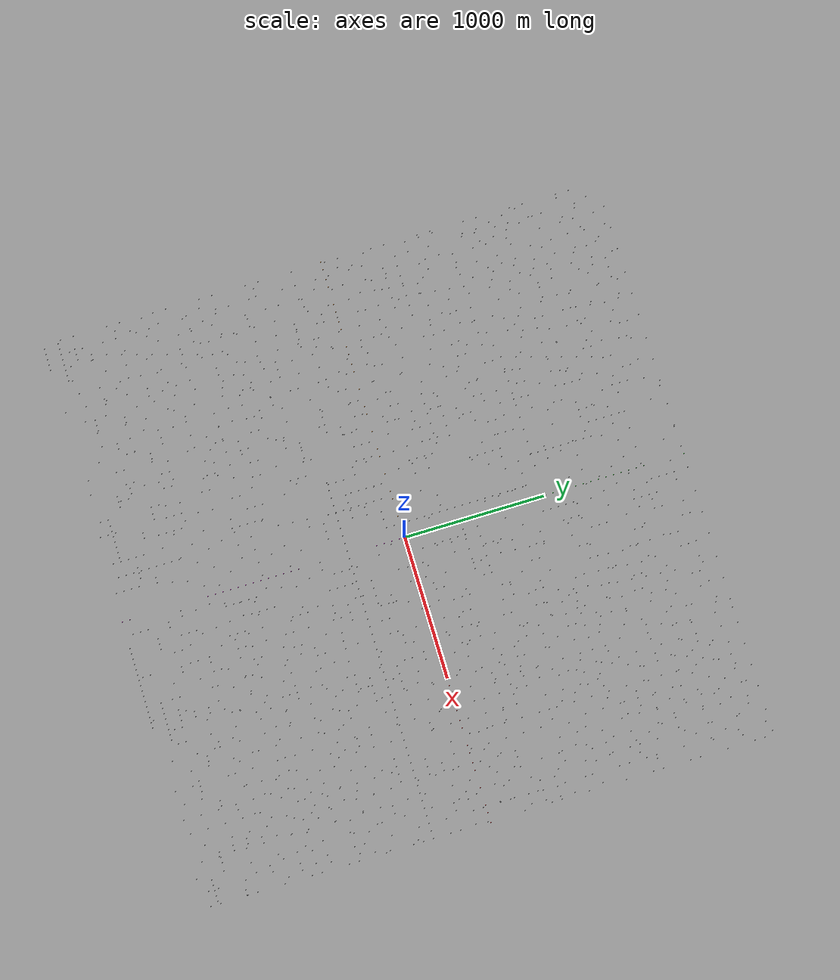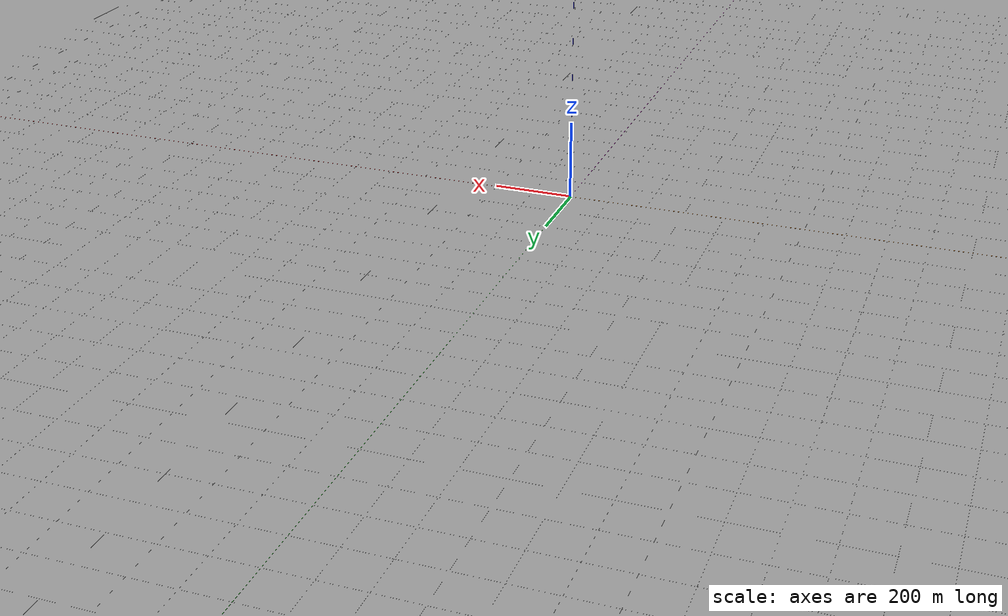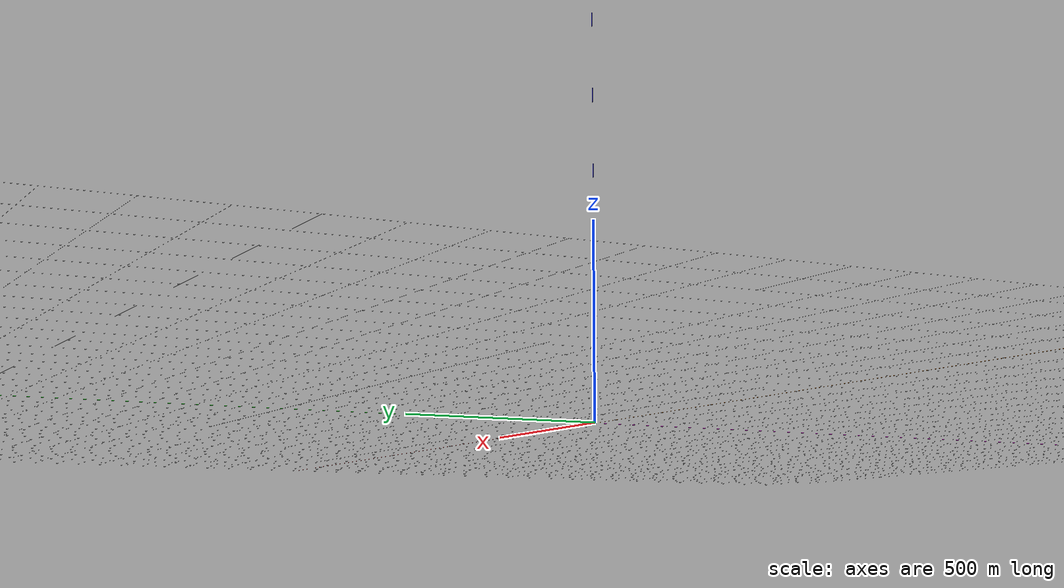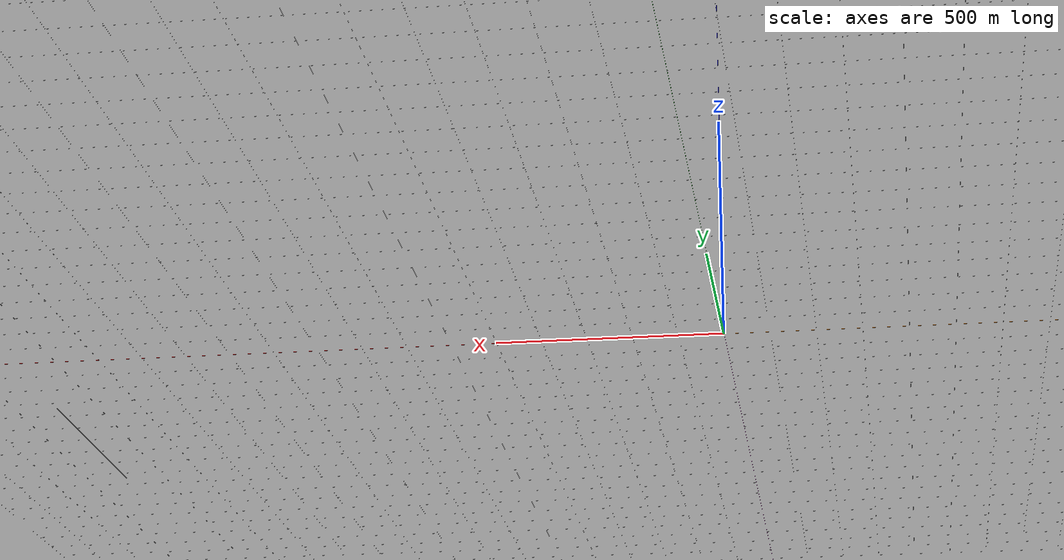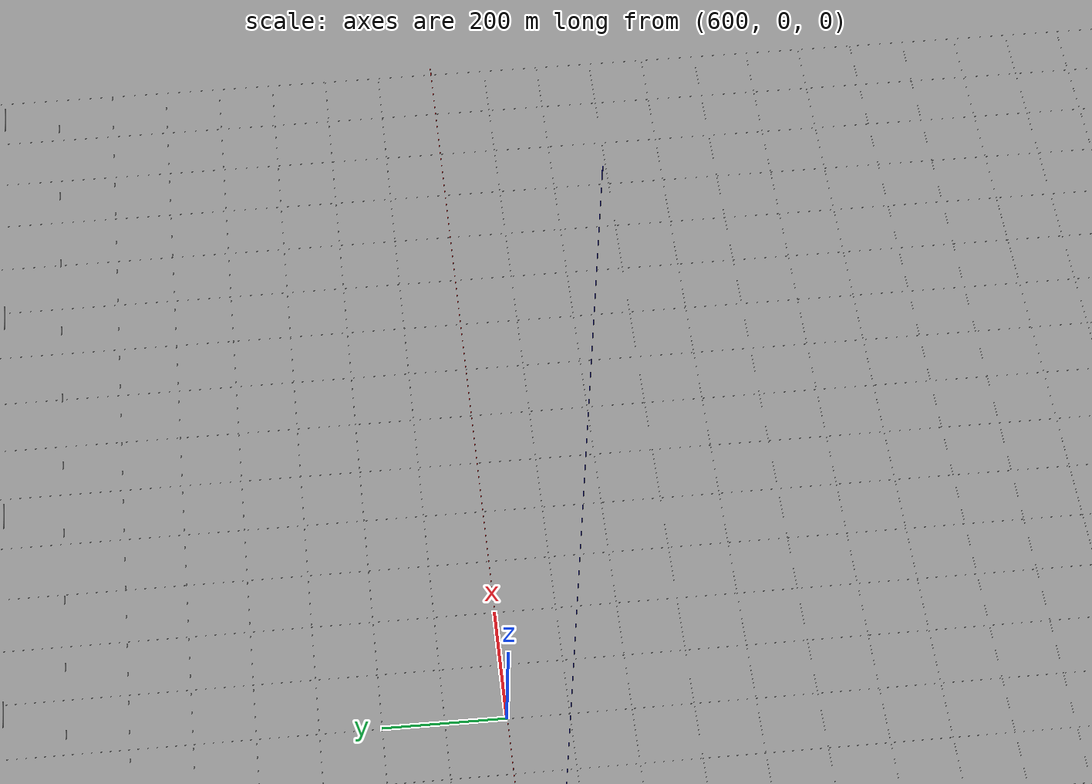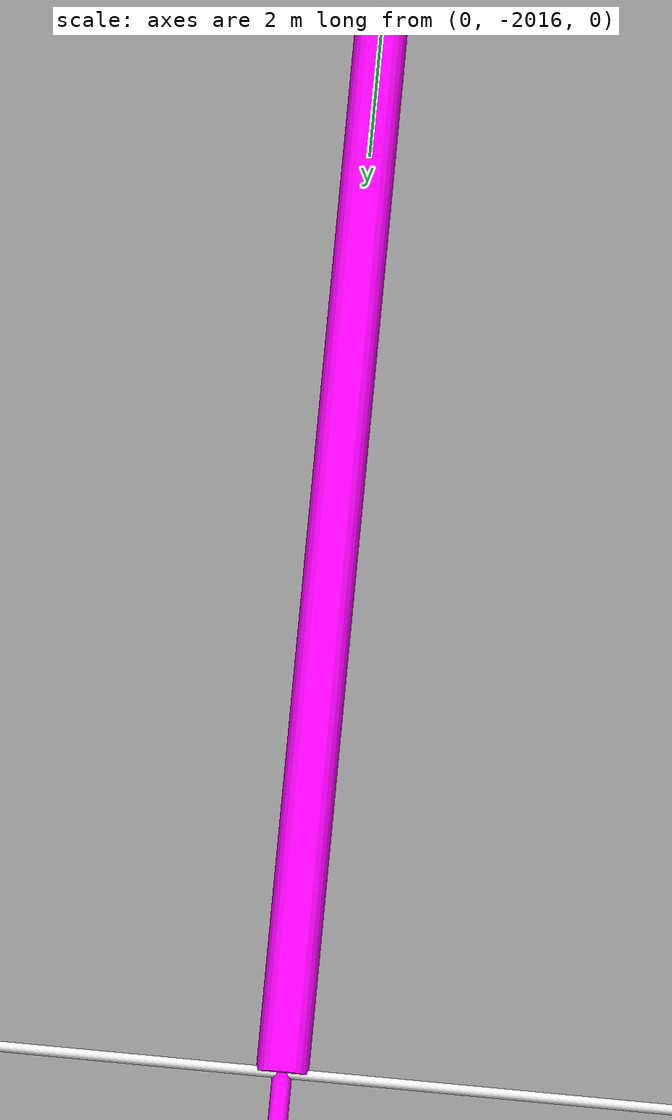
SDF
<?xml version="1.0" ?>
<sdf version="1.6">
  <model name="xy_reference_wheel">
    <static>true</static>
    <pose>0 0 0.02 0 0 0</pose>

    <!-- === EJE X+ ROJO === -->
    <link name="axis_x_body">
      <visual name="vis">
        <pose>1000 0 0  0 1.5707963 0</pose>
        <geometry><cylinder><radius>0.15</radius><length>2000</length></cylinder></geometry>
        <material><ambient>1 0 0 1</ambient><diffuse>1 0 0 1</diffuse></material>
      </visual>
    </link>
    <link name="axis_x_tip">
      <visual name="vis">
        <pose>2008 0 0  0 1.5707963 0</pose>
        <geometry><cylinder><radius>0.4</radius><length>16</length></cylinder></geometry>
        <material><ambient>1 0 0 1</ambient><diffuse>1 0 0 1</diffuse></material>
      </visual>
    </link>

    <!-- === EJE X- NARANJA === -->
    <link name="axis_xneg_body">
      <visual name="vis">
        <pose>-1000 0 0  0 1.5707963 0</pose>
        <geometry><cylinder><radius>0.15</radius><length>2000</length></cylinder></geometry>
        <material><ambient>1 0.5 0 1</ambient><diffuse>1 0.5 0 1</diffuse></material>
      </visual>
    </link>
    <link name="axis_xneg_tip">
      <visual name="vis">
        <pose>-2008 0 0  0 1.5707963 0</pose>
        <geometry><cylinder><radius>0.4</radius><length>16</length></cylinder></geometry>
        <material><ambient>1 0.5 0 1</ambient><diffuse>1 0.5 0 1</diffuse></material>
      </visual>
    </link>

    <!-- === EJE Y+ VERDE === -->
    <link name="axis_y_body">
      <visual name="vis">
        <pose>0 1000 0  1.5707963 0 0</pose>
        <geometry><cylinder><radius>0.15</radius><length>2000</length></cylinder></geometry>
        <material><ambient>0 1 0 1</ambient><diffuse>0 1 0 1</diffuse></material>
      </visual>
    </link>
    <link name="axis_y_tip">
      <visual name="vis">
        <pose>0 2008 0  1.5707963 0 0</pose>
        <geometry><cylinder><radius>0.4</radius><length>16</length></cylinder></geometry>
        <material><ambient>0 1 0 1</ambient><diffuse>0 1 0 1</diffuse></material>
      </visual>
    </link>

    <!-- === EJE Y- MAGENTA === -->
    <link name="axis_yneg_body">
      <visual name="vis">
        <pose>0 -1000 0  1.5707963 0 0</pose>
        <geometry><cylinder><radius>0.15</radius><length>2000</length></cylinder></geometry>
        <material><ambient>1 0 1 1</ambient><diffuse>1 0 1 1</diffuse></material>
      </visual>
    </link>
    <link name="axis_yneg_tip">
      <visual name="vis">
        <pose>0 -2008 0  1.5707963 0 0</pose>
        <geometry><cylinder><radius>0.4</radius><length>16</length></cylinder></geometry>
        <material><ambient>1 0 1 1</ambient><diffuse>1 0 1 1</diffuse></material>
      </visual>
    </link>

    <!-- === EJE Z+ AZUL === -->
    <link name="axis_z_body">
      <visual name="vis">
        <pose>0 0 1000  0 0 0</pose>
        <geometry><cylinder><radius>0.15</radius><length>2000</length></cylinder></geometry>
        <material><ambient>0 0 1 1</ambient><diffuse>0 0 1 1</diffuse></material>
      </visual>
    </link>
    <link name="axis_z_tip">
      <visual name="vis">
        <pose>0 0 2008  0 0 0</pose>
        <geometry><cylinder><radius>0.4</radius><length>16</length></cylinder></geometry>
        <material><ambient>0 0 1 1</ambient><diffuse>0 0 1 1</diffuse></material>
      </visual>
    </link>

    <!-- === MALLA DE REFERENCIA XY (espaciado 100 m, extensión ±2000 m) === -->
    <!-- z=0.05 para evitar z-fighting con el océano, color sólido blanco tenue -->
    <link name="grid_x_0">
      <visual name="vis">
        <pose>0 -2000 0.05  0 1.5707963 0</pose>
        <geometry><cylinder><radius>0.08</radius><length>4000</length></cylinder></geometry>
        <material>
          <ambient>0.9 0.9 0.9 1</ambient>
          <diffuse>0.9 0.9 0.9 1</diffuse>
          <transparency>0.5</transparency>
        </material>
      </visual>
    </link>
    <link name="grid_x_1">
      <visual name="vis">
        <pose>0 -1900 0.05  0 1.5707963 0</pose>
        <geometry><cylinder><radius>0.08</radius><length>4000</length></cylinder></geometry>
        <material>
          <ambient>0.9 0.9 0.9 1</ambient>
          <diffuse>0.9 0.9 0.9 1</diffuse>
          <transparency>0.5</transparency>
        </material>
      </visual>
    </link>
    <link name="grid_x_2">
      <visual name="vis">
        <pose>0 -1800 0.05  0 1.5707963 0</pose>
        <geometry><cylinder><radius>0.08</radius><length>4000</length></cylinder></geometry>
        <material>
          <ambient>0.9 0.9 0.9 1</ambient>
          <diffuse>0.9 0.9 0.9 1</diffuse>
          <transparency>0.5</transparency>
        </material>
      </visual>
    </link>
    <link name="grid_x_3">
      <visual name="vis">
        <pose>0 -1700 0.05  0 1.5707963 0</pose>
        <geometry><cylinder><radius>0.08</radius><length>4000</length></cylinder></geometry>
        <material>
          <ambient>0.9 0.9 0.9 1</ambient>
          <diffuse>0.9 0.9 0.9 1</diffuse>
          <transparency>0.5</transparency>
        </material>
      </visual>
    </link>
    <link name="grid_x_4">
      <visual name="vis">
        <pose>0 -1600 0.05  0 1.5707963 0</pose>
        <geometry><cylinder><radius>0.08</radius><length>4000</length></cylinder></geometry>
        <material>
          <ambient>0.9 0.9 0.9 1</ambient>
          <diffuse>0.9 0.9 0.9 1</diffuse>
          <transparency>0.5</transparency>
        </material>
      </visual>
    </link>
    <link name="grid_x_5">
      <visual name="vis">
        <pose>0 -1500 0.05  0 1.5707963 0</pose>
        <geometry><cylinder><radius>0.08</radius><length>4000</length></cylinder></geometry>
        <material>
          <ambient>0.9 0.9 0.9 1</ambient>
          <diffuse>0.9 0.9 0.9 1</diffuse>
          <transparency>0.5</transparency>
        </material>
      </visual>
    </link>
    <link name="grid_x_6">
      <visual name="vis">
        <pose>0 -1400 0.05  0 1.5707963 0</pose>
        <geometry><cylinder><radius>0.08</radius><length>4000</length></cylinder></geometry>
        <material>
          <ambient>0.9 0.9 0.9 1</ambient>
          <diffuse>0.9 0.9 0.9 1</diffuse>
          <transparency>0.5</transparency>
        </material>
      </visual>
    </link>
    <link name="grid_x_7">
      <visual name="vis">
        <pose>0 -1300 0.05  0 1.5707963 0</pose>
        <geometry><cylinder><radius>0.08</radius><length>4000</length></cylinder></geometry>
        <material>
          <ambient>0.9 0.9 0.9 1</ambient>
          <diffuse>0.9 0.9 0.9 1</diffuse>
          <transparency>0.5</transparency>
        </material>
      </visual>
    </link>
    <link name="grid_x_8">
      <visual name="vis">
        <pose>0 -1200 0.05  0 1.5707963 0</pose>
        <geometry><cylinder><radius>0.08</radius><length>4000</length></cylinder></geometry>
        <material>
          <ambient>0.9 0.9 0.9 1</ambient>
          <diffuse>0.9 0.9 0.9 1</diffuse>
          <transparency>0.5</transparency>
        </material>
      </visual>
    </link>
    <link name="grid_x_9">
      <visual name="vis">
        <pose>0 -1100 0.05  0 1.5707963 0</pose>
        <geometry><cylinder><radius>0.08</radius><length>4000</length></cylinder></geometry>
        <material>
          <ambient>0.9 0.9 0.9 1</ambient>
          <diffuse>0.9 0.9 0.9 1</diffuse>
          <transparency>0.5</transparency>
        </material>
      </visual>
    </link>
    <link name="grid_x_10">
      <visual name="vis">
        <pose>0 -1000 0.05  0 1.5707963 0</pose>
        <geometry><cylinder><radius>0.08</radius><length>4000</length></cylinder></geometry>
        <material>
          <ambient>0.9 0.9 0.9 1</ambient>
          <diffuse>0.9 0.9 0.9 1</diffuse>
          <transparency>0.5</transparency>
        </material>
      </visual>
    </link>
    <link name="grid_x_11">
      <visual name="vis">
        <pose>0 -900 0.05  0 1.5707963 0</pose>
        <geometry><cylinder><radius>0.08</radius><length>4000</length></cylinder></geometry>
        <material>
          <ambient>0.9 0.9 0.9 1</ambient>
          <diffuse>0.9 0.9 0.9 1</diffuse>
          <transparency>0.5</transparency>
        </material>
      </visual>
    </link>
    <link name="grid_x_12">
      <visual name="vis">
        <pose>0 -800 0.05  0 1.5707963 0</pose>
        <geometry><cylinder><radius>0.08</radius><length>4000</length></cylinder></geometry>
        <material>
          <ambient>0.9 0.9 0.9 1</ambient>
          <diffuse>0.9 0.9 0.9 1</diffuse>
          <transparency>0.5</transparency>
        </material>
      </visual>
    </link>
    <link name="grid_x_13">
      <visual name="vis">
        <pose>0 -700 0.05  0 1.5707963 0</pose>
        <geometry><cylinder><radius>0.08</radius><length>4000</length></cylinder></geometry>
        <material>
          <ambient>0.9 0.9 0.9 1</ambient>
          <diffuse>0.9 0.9 0.9 1</diffuse>
          <transparency>0.5</transparency>
        </material>
      </visual>
    </link>
    <link name="grid_x_14">
      <visual name="vis">
        <pose>0 -600 0.05  0 1.5707963 0</pose>
        <geometry><cylinder><radius>0.08</radius><length>4000</length></cylinder></geometry>
        <material>
          <ambient>0.9 0.9 0.9 1</ambient>
          <diffuse>0.9 0.9 0.9 1</diffuse>
          <transparency>0.5</transparency>
        </material>
      </visual>
    </link>
    <link name="grid_x_15">
      <visual name="vis">
        <pose>0 -500 0.05  0 1.5707963 0</pose>
        <geometry><cylinder><radius>0.08</radius><length>4000</length></cylinder></geometry>
        <material>
          <ambient>0.9 0.9 0.9 1</ambient>
          <diffuse>0.9 0.9 0.9 1</diffuse>
          <transparency>0.5</transparency>
        </material>
      </visual>
    </link>
    <link name="grid_x_16">
      <visual name="vis">
        <pose>0 -400 0.05  0 1.5707963 0</pose>
        <geometry><cylinder><radius>0.08</radius><length>4000</length></cylinder></geometry>
        <material>
          <ambient>0.9 0.9 0.9 1</ambient>
          <diffuse>0.9 0.9 0.9 1</diffuse>
          <transparency>0.5</transparency>
        </material>
      </visual>
    </link>
    <link name="grid_x_17">
      <visual name="vis">
        <pose>0 -300 0.05  0 1.5707963 0</pose>
        <geometry><cylinder><radius>0.08</radius><length>4000</length></cylinder></geometry>
        <material>
          <ambient>0.9 0.9 0.9 1</ambient>
          <diffuse>0.9 0.9 0.9 1</diffuse>
          <transparency>0.5</transparency>
        </material>
      </visual>
    </link>
    <link name="grid_x_18">
      <visual name="vis">
        <pose>0 -200 0.05  0 1.5707963 0</pose>
        <geometry><cylinder><radius>0.08</radius><length>4000</length></cylinder></geometry>
        <material>
          <ambient>0.9 0.9 0.9 1</ambient>
          <diffuse>0.9 0.9 0.9 1</diffuse>
          <transparency>0.5</transparency>
        </material>
      </visual>
    </link>
    <link name="grid_x_19">
      <visual name="vis">
        <pose>0 -100 0.05  0 1.5707963 0</pose>
        <geometry><cylinder><radius>0.08</radius><length>4000</length></cylinder></geometry>
        <material>
          <ambient>0.9 0.9 0.9 1</ambient>
          <diffuse>0.9 0.9 0.9 1</diffuse>
          <transparency>0.5</transparency>
        </material>
      </visual>
    </link>
    <link name="grid_x_20">
      <visual name="vis">
        <pose>0 100 0.05  0 1.5707963 0</pose>
        <geometry><cylinder><radius>0.08</radius><length>4000</length></cylinder></geometry>
        <material>
          <ambient>0.9 0.9 0.9 1</ambient>
          <diffuse>0.9 0.9 0.9 1</diffuse>
          <transparency>0.5</transparency>
        </material>
      </visual>
    </link>
    <link name="grid_x_21">
      <visual name="vis">
        <pose>0 200 0.05  0 1.5707963 0</pose>
        <geometry><cylinder><radius>0.08</radius><length>4000</length></cylinder></geometry>
        <material>
          <ambient>0.9 0.9 0.9 1</ambient>
          <diffuse>0.9 0.9 0.9 1</diffuse>
          <transparency>0.5</transparency>
        </material>
      </visual>
    </link>
    <link name="grid_x_22">
      <visual name="vis">
        <pose>0 300 0.05  0 1.5707963 0</pose>
        <geometry><cylinder><radius>0.08</radius><length>4000</length></cylinder></geometry>
        <material>
          <ambient>0.9 0.9 0.9 1</ambient>
          <diffuse>0.9 0.9 0.9 1</diffuse>
          <transparency>0.5</transparency>
        </material>
      </visual>
    </link>
    <link name="grid_x_23">
      <visual name="vis">
        <pose>0 400 0.05  0 1.5707963 0</pose>
        <geometry><cylinder><radius>0.08</radius><length>4000</length></cylinder></geometry>
        <material>
          <ambient>0.9 0.9 0.9 1</ambient>
          <diffuse>0.9 0.9 0.9 1</diffuse>
          <transparency>0.5</transparency>
        </material>
      </visual>
    </link>
    <link name="grid_x_24">
      <visual name="vis">
        <pose>0 500 0.05  0 1.5707963 0</pose>
        <geometry><cylinder><radius>0.08</radius><length>4000</length></cylinder></geometry>
        <material>
          <ambient>0.9 0.9 0.9 1</ambient>
          <diffuse>0.9 0.9 0.9 1</diffuse>
          <transparency>0.5</transparency>
        </material>
      </visual>
    </link>
    <link name="grid_x_25">
      <visual name="vis">
        <pose>0 600 0.05  0 1.5707963 0</pose>
        <geometry><cylinder><radius>0.08</radius><length>4000</length></cylinder></geometry>
        <material>
          <ambient>0.9 0.9 0.9 1</ambient>
          <diffuse>0.9 0.9 0.9 1</diffuse>
          <transparency>0.5</transparency>
        </material>
      </visual>
    </link>
    <link name="grid_x_26">
      <visual name="vis">
        <pose>0 700 0.05  0 1.5707963 0</pose>
        <geometry><cylinder><radius>0.08</radius><length>4000</length></cylinder></geometry>
        <material>
          <ambient>0.9 0.9 0.9 1</ambient>
          <diffuse>0.9 0.9 0.9 1</diffuse>
          <transparency>0.5</transparency>
        </material>
      </visual>
    </link>
    <link name="grid_x_27">
      <visual name="vis">
        <pose>0 800 0.05  0 1.5707963 0</pose>
        <geometry><cylinder><radius>0.08</radius><length>4000</length></cylinder></geometry>
        <material>
          <ambient>0.9 0.9 0.9 1</ambient>
          <diffuse>0.9 0.9 0.9 1</diffuse>
          <transparency>0.5</transparency>
        </material>
      </visual>
    </link>
    <link name="grid_x_28">
      <visual name="vis">
        <pose>0 900 0.05  0 1.5707963 0</pose>
        <geometry><cylinder><radius>0.08</radius><length>4000</length></cylinder></geometry>
        <material>
          <ambient>0.9 0.9 0.9 1</ambient>
          <diffuse>0.9 0.9 0.9 1</diffuse>
          <transparency>0.5</transparency>
        </material>
      </visual>
    </link>
    <link name="grid_x_29">
      <visual name="vis">
        <pose>0 1000 0.05  0 1.5707963 0</pose>
        <geometry><cylinder><radius>0.08</radius><length>4000</length></cylinder></geometry>
        <material>
          <ambient>0.9 0.9 0.9 1</ambient>
          <diffuse>0.9 0.9 0.9 1</diffuse>
          <transparency>0.5</transparency>
        </material>
      </visual>
    </link>
    <link name="grid_x_30">
      <visual name="vis">
        <pose>0 1100 0.05  0 1.5707963 0</pose>
        <geometry><cylinder><radius>0.08</radius><length>4000</length></cylinder></geometry>
        <material>
          <ambient>0.9 0.9 0.9 1</ambient>
          <diffuse>0.9 0.9 0.9 1</diffuse>
          <transparency>0.5</transparency>
        </material>
      </visual>
    </link>
    <link name="grid_x_31">
      <visual name="vis">
        <pose>0 1200 0.05  0 1.5707963 0</pose>
        <geometry><cylinder><radius>0.08</radius><length>4000</length></cylinder></geometry>
        <material>
          <ambient>0.9 0.9 0.9 1</ambient>
          <diffuse>0.9 0.9 0.9 1</diffuse>
          <transparency>0.5</transparency>
        </material>
      </visual>
    </link>
    <link name="grid_x_32">
      <visual name="vis">
        <pose>0 1300 0.05  0 1.5707963 0</pose>
        <geometry><cylinder><radius>0.08</radius><length>4000</length></cylinder></geometry>
        <material>
          <ambient>0.9 0.9 0.9 1</ambient>
          <diffuse>0.9 0.9 0.9 1</diffuse>
          <transparency>0.5</transparency>
        </material>
      </visual>
    </link>
    <link name="grid_x_33">
      <visual name="vis">
        <pose>0 1400 0.05  0 1.5707963 0</pose>
        <geometry><cylinder><radius>0.08</radius><length>4000</length></cylinder></geometry>
        <material>
          <ambient>0.9 0.9 0.9 1</ambient>
          <diffuse>0.9 0.9 0.9 1</diffuse>
          <transparency>0.5</transparency>
        </material>
      </visual>
    </link>
    <link name="grid_x_34">
      <visual name="vis">
        <pose>0 1500 0.05  0 1.5707963 0</pose>
        <geometry><cylinder><radius>0.08</radius><length>4000</length></cylinder></geometry>
        <material>
          <ambient>0.9 0.9 0.9 1</ambient>
          <diffuse>0.9 0.9 0.9 1</diffuse>
          <transparency>0.5</transparency>
        </material>
      </visual>
    </link>
    <link name="grid_x_35">
      <visual name="vis">
        <pose>0 1600 0.05  0 1.5707963 0</pose>
        <geometry><cylinder><radius>0.08</radius><length>4000</length></cylinder></geometry>
        <material>
          <ambient>0.9 0.9 0.9 1</ambient>
          <diffuse>0.9 0.9 0.9 1</diffuse>
          <transparency>0.5</transparency>
        </material>
      </visual>
    </link>
    <link name="grid_x_36">
      <visual name="vis">
        <pose>0 1700 0.05  0 1.5707963 0</pose>
        <geometry><cylinder><radius>0.08</radius><length>4000</length></cylinder></geometry>
        <material>
          <ambient>0.9 0.9 0.9 1</ambient>
          <diffuse>0.9 0.9 0.9 1</diffuse>
          <transparency>0.5</transparency>
        </material>
      </visual>
    </link>
    <link name="grid_x_37">
      <visual name="vis">
        <pose>0 1800 0.05  0 1.5707963 0</pose>
        <geometry><cylinder><radius>0.08</radius><length>4000</length></cylinder></geometry>
        <material>
          <ambient>0.9 0.9 0.9 1</ambient>
          <diffuse>0.9 0.9 0.9 1</diffuse>
          <transparency>0.5</transparency>
        </material>
      </visual>
    </link>
    <link name="grid_x_38">
      <visual name="vis">
        <pose>0 1900 0.05  0 1.5707963 0</pose>
        <geometry><cylinder><radius>0.08</radius><length>4000</length></cylinder></geometry>
        <material>
          <ambient>0.9 0.9 0.9 1</ambient>
          <diffuse>0.9 0.9 0.9 1</diffuse>
          <transparency>0.5</transparency>
        </material>
      </visual>
    </link>
    <link name="grid_x_39">
      <visual name="vis">
        <pose>0 2000 0.05  0 1.5707963 0</pose>
        <geometry><cylinder><radius>0.08</radius><length>4000</length></cylinder></geometry>
        <material>
          <ambient>0.9 0.9 0.9 1</ambient>
          <diffuse>0.9 0.9 0.9 1</diffuse>
          <transparency>0.5</transparency>
        </material>
      </visual>
    </link>
    <link name="grid_y_0">
      <visual name="vis">
        <pose>-2000 0 0.05  1.5707963 0 0</pose>
        <geometry><cylinder><radius>0.08</radius><length>4000</length></cylinder></geometry>
        <material>
          <ambient>0.9 0.9 0.9 1</ambient>
          <diffuse>0.9 0.9 0.9 1</diffuse>
          <transparency>0.5</transparency>
        </material>
      </visual>
    </link>
    <link name="grid_y_1">
      <visual name="vis">
        <pose>-1900 0 0.05  1.5707963 0 0</pose>
        <geometry><cylinder><radius>0.08</radius><length>4000</length></cylinder></geometry>
        <material>
          <ambient>0.9 0.9 0.9 1</ambient>
          <diffuse>0.9 0.9 0.9 1</diffuse>
          <transparency>0.5</transparency>
        </material>
      </visual>
    </link>
    <link name="grid_y_2">
      <visual name="vis">
        <pose>-1800 0 0.05  1.5707963 0 0</pose>
        <geometry><cylinder><radius>0.08</radius><length>4000</length></cylinder></geometry>
        <material>
          <ambient>0.9 0.9 0.9 1</ambient>
          <diffuse>0.9 0.9 0.9 1</diffuse>
          <transparency>0.5</transparency>
        </material>
      </visual>
    </link>
    <link name="grid_y_3">
      <visual name="vis">
        <pose>-1700 0 0.05  1.5707963 0 0</pose>
        <geometry><cylinder><radius>0.08</radius><length>4000</length></cylinder></geometry>
        <material>
          <ambient>0.9 0.9 0.9 1</ambient>
          <diffuse>0.9 0.9 0.9 1</diffuse>
          <transparency>0.5</transparency>
        </material>
      </visual>
    </link>
    <link name="grid_y_4">
      <visual name="vis">
        <pose>-1600 0 0.05  1.5707963 0 0</pose>
        <geometry><cylinder><radius>0.08</radius><length>4000</length></cylinder></geometry>
        <material>
          <ambient>0.9 0.9 0.9 1</ambient>
          <diffuse>0.9 0.9 0.9 1</diffuse>
          <transparency>0.5</transparency>
        </material>
      </visual>
    </link>
    <link name="grid_y_5">
      <visual name="vis">
        <pose>-1500 0 0.05  1.5707963 0 0</pose>
        <geometry><cylinder><radius>0.08</radius><length>4000</length></cylinder></geometry>
        <material>
          <ambient>0.9 0.9 0.9 1</ambient>
          <diffuse>0.9 0.9 0.9 1</diffuse>
          <transparency>0.5</transparency>
        </material>
      </visual>
    </link>
    <link name="grid_y_6">
      <visual name="vis">
        <pose>-1400 0 0.05  1.5707963 0 0</pose>
        <geometry><cylinder><radius>0.08</radius><length>4000</length></cylinder></geometry>
        <material>
          <ambient>0.9 0.9 0.9 1</ambient>
          <diffuse>0.9 0.9 0.9 1</diffuse>
          <transparency>0.5</transparency>
        </material>
      </visual>
    </link>
    <link name="grid_y_7">
      <visual name="vis">
        <pose>-1300 0 0.05  1.5707963 0 0</pose>
        <geometry><cylinder><radius>0.08</radius><length>4000</length></cylinder></geometry>
        <material>
          <ambient>0.9 0.9 0.9 1</ambient>
          <diffuse>0.9 0.9 0.9 1</diffuse>
          <transparency>0.5</transparency>
        </material>
      </visual>
    </link>
    <link name="grid_y_8">
      <visual name="vis">
        <pose>-1200 0 0.05  1.5707963 0 0</pose>
        <geometry><cylinder><radius>0.08</radius><length>4000</length></cylinder></geometry>
        <material>
          <ambient>0.9 0.9 0.9 1</ambient>
          <diffuse>0.9 0.9 0.9 1</diffuse>
          <transparency>0.5</transparency>
        </material>
      </visual>
    </link>
    <link name="grid_y_9">
      <visual name="vis">
        <pose>-1100 0 0.05  1.5707963 0 0</pose>
        <geometry><cylinder><radius>0.08</radius><length>4000</length></cylinder></geometry>
        <material>
          <ambient>0.9 0.9 0.9 1</ambient>
          <diffuse>0.9 0.9 0.9 1</diffuse>
          <transparency>0.5</transparency>
        </material>
      </visual>
    </link>
    <link name="grid_y_10">
      <visual name="vis">
        <pose>-1000 0 0.05  1.5707963 0 0</pose>
        <geometry><cylinder><radius>0.08</radius><length>4000</length></cylinder></geometry>
        <material>
          <ambient>0.9 0.9 0.9 1</ambient>
          <diffuse>0.9 0.9 0.9 1</diffuse>
          <transparency>0.5</transparency>
        </material>
      </visual>
    </link>
    <link name="grid_y_11">
      <visual name="vis">
        <pose>-900 0 0.05  1.5707963 0 0</pose>
        <geometry><cylinder><radius>0.08</radius><length>4000</length></cylinder></geometry>
        <material>
          <ambient>0.9 0.9 0.9 1</ambient>
          <diffuse>0.9 0.9 0.9 1</diffuse>
          <transparency>0.5</transparency>
        </material>
      </visual>
    </link>
    <link name="grid_y_12">
      <visual name="vis">
        <pose>-800 0 0.05  1.5707963 0 0</pose>
        <geometry><cylinder><radius>0.08</radius><length>4000</length></cylinder></geometry>
        <material>
          <ambient>0.9 0.9 0.9 1</ambient>
          <diffuse>0.9 0.9 0.9 1</diffuse>
          <transparency>0.5</transparency>
        </material>
      </visual>
    </link>
    <link name="grid_y_13">
      <visual name="vis">
        <pose>-700 0 0.05  1.5707963 0 0</pose>
        <geometry><cylinder><radius>0.08</radius><length>4000</length></cylinder></geometry>
        <material>
          <ambient>0.9 0.9 0.9 1</ambient>
          <diffuse>0.9 0.9 0.9 1</diffuse>
          <transparency>0.5</transparency>
        </material>
      </visual>
    </link>
    <link name="grid_y_14">
      <visual name="vis">
        <pose>-600 0 0.05  1.5707963 0 0</pose>
        <geometry><cylinder><radius>0.08</radius><length>4000</length></cylinder></geometry>
        <material>
          <ambient>0.9 0.9 0.9 1</ambient>
          <diffuse>0.9 0.9 0.9 1</diffuse>
          <transparency>0.5</transparency>
        </material>
      </visual>
    </link>
    <link name="grid_y_15">
      <visual name="vis">
        <pose>-500 0 0.05  1.5707963 0 0</pose>
        <geometry><cylinder><radius>0.08</radius><length>4000</length></cylinder></geometry>
        <material>
          <ambient>0.9 0.9 0.9 1</ambient>
          <diffuse>0.9 0.9 0.9 1</diffuse>
          <transparency>0.5</transparency>
        </material>
      </visual>
    </link>
    <link name="grid_y_16">
      <visual name="vis">
        <pose>-400 0 0.05  1.5707963 0 0</pose>
        <geometry><cylinder><radius>0.08</radius><length>4000</length></cylinder></geometry>
        <material>
          <ambient>0.9 0.9 0.9 1</ambient>
          <diffuse>0.9 0.9 0.9 1</diffuse>
          <transparency>0.5</transparency>
        </material>
      </visual>
    </link>
    <link name="grid_y_17">
      <visual name="vis">
        <pose>-300 0 0.05  1.5707963 0 0</pose>
        <geometry><cylinder><radius>0.08</radius><length>4000</length></cylinder></geometry>
        <material>
          <ambient>0.9 0.9 0.9 1</ambient>
          <diffuse>0.9 0.9 0.9 1</diffuse>
          <transparency>0.5</transparency>
        </material>
      </visual>
    </link>
    <link name="grid_y_18">
      <visual name="vis">
        <pose>-200 0 0.05  1.5707963 0 0</pose>
        <geometry><cylinder><radius>0.08</radius><length>4000</length></cylinder></geometry>
        <material>
          <ambient>0.9 0.9 0.9 1</ambient>
          <diffuse>0.9 0.9 0.9 1</diffuse>
          <transparency>0.5</transparency>
        </material>
      </visual>
    </link>
    <link name="grid_y_19">
      <visual name="vis">
        <pose>-100 0 0.05  1.5707963 0 0</pose>
        <geometry><cylinder><radius>0.08</radius><length>4000</length></cylinder></geometry>
        <material>
          <ambient>0.9 0.9 0.9 1</ambient>
          <diffuse>0.9 0.9 0.9 1</diffuse>
          <transparency>0.5</transparency>
        </material>
      </visual>
    </link>
    <link name="grid_y_20">
      <visual name="vis">
        <pose>100 0 0.05  1.5707963 0 0</pose>
        <geometry><cylinder><radius>0.08</radius><length>4000</length></cylinder></geometry>
        <material>
          <ambient>0.9 0.9 0.9 1</ambient>
          <diffuse>0.9 0.9 0.9 1</diffuse>
          <transparency>0.5</transparency>
        </material>
      </visual>
    </link>
    <link name="grid_y_21">
      <visual name="vis">
        <pose>200 0 0.05  1.5707963 0 0</pose>
        <geometry><cylinder><radius>0.08</radius><length>4000</length></cylinder></geometry>
        <material>
          <ambient>0.9 0.9 0.9 1</ambient>
          <diffuse>0.9 0.9 0.9 1</diffuse>
          <transparency>0.5</transparency>
        </material>
      </visual>
    </link>
    <link name="grid_y_22">
      <visual name="vis">
        <pose>300 0 0.05  1.5707963 0 0</pose>
        <geometry><cylinder><radius>0.08</radius><length>4000</length></cylinder></geometry>
        <material>
          <ambient>0.9 0.9 0.9 1</ambient>
          <diffuse>0.9 0.9 0.9 1</diffuse>
          <transparency>0.5</transparency>
        </material>
      </visual>
    </link>
    <link name="grid_y_23">
      <visual name="vis">
        <pose>400 0 0.05  1.5707963 0 0</pose>
        <geometry><cylinder><radius>0.08</radius><length>4000</length></cylinder></geometry>
        <material>
          <ambient>0.9 0.9 0.9 1</ambient>
          <diffuse>0.9 0.9 0.9 1</diffuse>
          <transparency>0.5</transparency>
        </material>
      </visual>
    </link>
    <link name="grid_y_24">
      <visual name="vis">
        <pose>500 0 0.05  1.5707963 0 0</pose>
        <geometry><cylinder><radius>0.08</radius><length>4000</length></cylinder></geometry>
        <material>
          <ambient>0.9 0.9 0.9 1</ambient>
          <diffuse>0.9 0.9 0.9 1</diffuse>
          <transparency>0.5</transparency>
        </material>
      </visual>
    </link>
    <link name="grid_y_25">
      <visual name="vis">
        <pose>600 0 0.05  1.5707963 0 0</pose>
        <geometry><cylinder><radius>0.08</radius><length>4000</length></cylinder></geometry>
        <material>
          <ambient>0.9 0.9 0.9 1</ambient>
          <diffuse>0.9 0.9 0.9 1</diffuse>
          <transparency>0.5</transparency>
        </material>
      </visual>
    </link>
    <link name="grid_y_26">
      <visual name="vis">
        <pose>700 0 0.05  1.5707963 0 0</pose>
        <geometry><cylinder><radius>0.08</radius><length>4000</length></cylinder></geometry>
        <material>
          <ambient>0.9 0.9 0.9 1</ambient>
          <diffuse>0.9 0.9 0.9 1</diffuse>
          <transparency>0.5</transparency>
        </material>
      </visual>
    </link>
    <link name="grid_y_27">
      <visual name="vis">
        <pose>800 0 0.05  1.5707963 0 0</pose>
        <geometry><cylinder><radius>0.08</radius><length>4000</length></cylinder></geometry>
        <material>
          <ambient>0.9 0.9 0.9 1</ambient>
          <diffuse>0.9 0.9 0.9 1</diffuse>
          <transparency>0.5</transparency>
        </material>
      </visual>
    </link>
    <link name="grid_y_28">
      <visual name="vis">
        <pose>900 0 0.05  1.5707963 0 0</pose>
        <geometry><cylinder><radius>0.08</radius><length>4000</length></cylinder></geometry>
        <material>
          <ambient>0.9 0.9 0.9 1</ambient>
          <diffuse>0.9 0.9 0.9 1</diffuse>
          <transparency>0.5</transparency>
        </material>
      </visual>
    </link>
    <link name="grid_y_29">
      <visual name="vis">
        <pose>1000 0 0.05  1.5707963 0 0</pose>
        <geometry><cylinder><radius>0.08</radius><length>4000</length></cylinder></geometry>
        <material>
          <ambient>0.9 0.9 0.9 1</ambient>
          <diffuse>0.9 0.9 0.9 1</diffuse>
          <transparency>0.5</transparency>
        </material>
      </visual>
    </link>
    <link name="grid_y_30">
      <visual name="vis">
        <pose>1100 0 0.05  1.5707963 0 0</pose>
        <geometry><cylinder><radius>0.08</radius><length>4000</length></cylinder></geometry>
        <material>
          <ambient>0.9 0.9 0.9 1</ambient>
          <diffuse>0.9 0.9 0.9 1</diffuse>
          <transparency>0.5</transparency>
        </material>
      </visual>
    </link>
    <link name="grid_y_31">
      <visual name="vis">
        <pose>1200 0 0.05  1.5707963 0 0</pose>
        <geometry><cylinder><radius>0.08</radius><length>4000</length></cylinder></geometry>
        <material>
          <ambient>0.9 0.9 0.9 1</ambient>
          <diffuse>0.9 0.9 0.9 1</diffuse>
          <transparency>0.5</transparency>
        </material>
      </visual>
    </link>
    <link name="grid_y_32">
      <visual name="vis">
        <pose>1300 0 0.05  1.5707963 0 0</pose>
        <geometry><cylinder><radius>0.08</radius><length>4000</length></cylinder></geometry>
        <material>
          <ambient>0.9 0.9 0.9 1</ambient>
          <diffuse>0.9 0.9 0.9 1</diffuse>
          <transparency>0.5</transparency>
        </material>
      </visual>
    </link>
    <link name="grid_y_33">
      <visual name="vis">
        <pose>1400 0 0.05  1.5707963 0 0</pose>
        <geometry><cylinder><radius>0.08</radius><length>4000</length></cylinder></geometry>
        <material>
          <ambient>0.9 0.9 0.9 1</ambient>
          <diffuse>0.9 0.9 0.9 1</diffuse>
          <transparency>0.5</transparency>
        </material>
      </visual>
    </link>
    <link name="grid_y_34">
      <visual name="vis">
        <pose>1500 0 0.05  1.5707963 0 0</pose>
        <geometry><cylinder><radius>0.08</radius><length>4000</length></cylinder></geometry>
        <material>
          <ambient>0.9 0.9 0.9 1</ambient>
          <diffuse>0.9 0.9 0.9 1</diffuse>
          <transparency>0.5</transparency>
        </material>
      </visual>
    </link>
    <link name="grid_y_35">
      <visual name="vis">
        <pose>1600 0 0.05  1.5707963 0 0</pose>
        <geometry><cylinder><radius>0.08</radius><length>4000</length></cylinder></geometry>
        <material>
          <ambient>0.9 0.9 0.9 1</ambient>
          <diffuse>0.9 0.9 0.9 1</diffuse>
          <transparency>0.5</transparency>
        </material>
      </visual>
    </link>
    <link name="grid_y_36">
      <visual name="vis">
        <pose>1700 0 0.05  1.5707963 0 0</pose>
        <geometry><cylinder><radius>0.08</radius><length>4000</length></cylinder></geometry>
        <material>
          <ambient>0.9 0.9 0.9 1</ambient>
          <diffuse>0.9 0.9 0.9 1</diffuse>
          <transparency>0.5</transparency>
        </material>
      </visual>
    </link>
    <link name="grid_y_37">
      <visual name="vis">
        <pose>1800 0 0.05  1.5707963 0 0</pose>
        <geometry><cylinder><radius>0.08</radius><length>4000</length></cylinder></geometry>
        <material>
          <ambient>0.9 0.9 0.9 1</ambient>
          <diffuse>0.9 0.9 0.9 1</diffuse>
          <transparency>0.5</transparency>
        </material>
      </visual>
    </link>
    <link name="grid_y_38">
      <visual name="vis">
        <pose>1900 0 0.05  1.5707963 0 0</pose>
        <geometry><cylinder><radius>0.08</radius><length>4000</length></cylinder></geometry>
        <material>
          <ambient>0.9 0.9 0.9 1</ambient>
          <diffuse>0.9 0.9 0.9 1</diffuse>
          <transparency>0.5</transparency>
        </material>
      </visual>
    </link>
    <link name="grid_y_39">
      <visual name="vis">
        <pose>2000 0 0.05  1.5707963 0 0</pose>
        <geometry><cylinder><radius>0.08</radius><length>4000</length></cylinder></geometry>
        <material>
          <ambient>0.9 0.9 0.9 1</ambient>
          <diffuse>0.9 0.9 0.9 1</diffuse>
          <transparency>0.5</transparency>
        </material>
      </visual>
    </link>

  </model>
</sdf>
